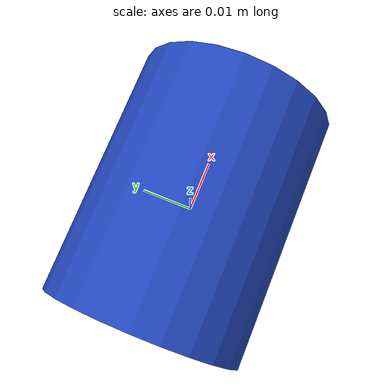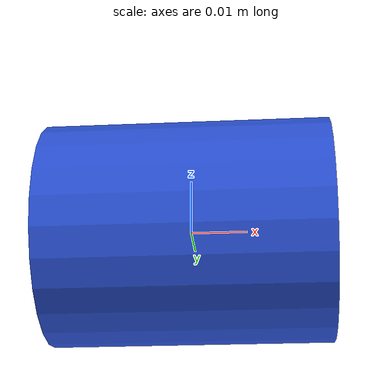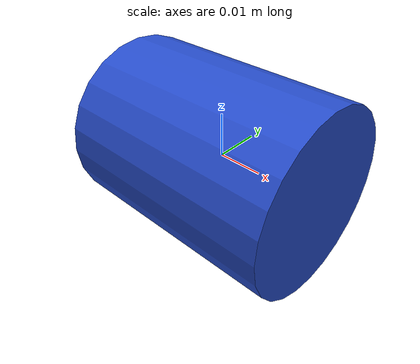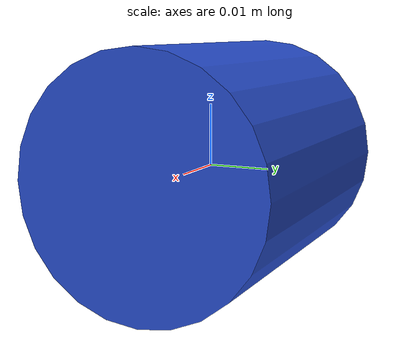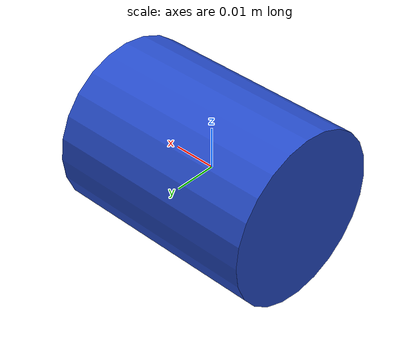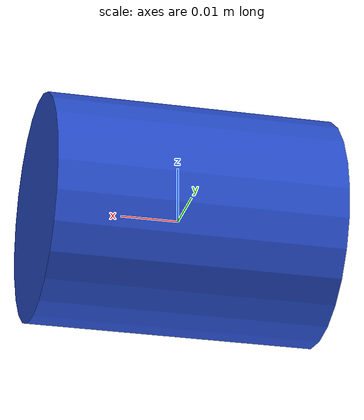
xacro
<?xml version="1.0"?>
<robot name="smocap_hog_camera" xmlns:xacro="http://www.ros.org/wiki/xacro">
  <xacro:property name="PI" value="3.1415926535897931" />

  <xacro:arg name="camera_id" default="1"/>
  <!-- pose of the camera root_link -->
  <xacro:arg name="camera_x"  default="0."/>
  <xacro:arg name="camera_y"  default="0."/>
  <xacro:arg name="camera_z"  default="0."/>
  <xacro:arg name="camera_R"  default="0."/>
  <xacro:arg name="camera_P"  default="0."/>
  <xacro:arg name="camera_Y"  default="0."/>
  <xacro:arg name="camera_w"  default="640"/>
  <xacro:arg name="camera_h"  default="480"/>

  <xacro:arg name="camera_root_link"  default="camera_root_link"/>

  <!-- Import camera macros -->
  <xacro:include filename="$(find smocap)/urdf/camera.urdf.xacro" />

  <!-- Instanciate camera -->
  <link name="$(arg camera_root_link)" />
  <xacro:smocap_camera _cid="$(arg camera_id)" _root_link="$(arg camera_root_link)"
		       _x="$(arg camera_x)" _y="$(arg camera_y)" _z="$(arg camera_z)"
		       _rx="$(arg camera_R)" _ry="$(arg camera_P)" _rz="$(arg camera_Y)"
		       _w="$(arg camera_w)" _h="$(arg camera_h)"
		       _k1="0." _k2="0." _k3="0." _t1="0." _t2="0." _fps="30." _static="false"/>

  <gazebo>
    <plugin name="hand_of_god" filename="libgazebo_ros_hand_of_god.so">
      <linkName>$(arg camera_root_link)</linkName>
      <kl>0.4</kl>
      <ka>0.01</ka>
      <frameId>$(arg camera_root_link)</frameId>
    </plugin>
  </gazebo>

  <gazebo>
    <plugin name="ground_truth" filename="libgazebo_ros_p3d.so">
      <frameName>world</frameName>
      <bodyName>$(arg camera_root_link)</bodyName>
      <topicName>smocap/$(arg camera_root_link)_truth</topicName>
      <updateRate>30.0</updateRate>
    </plugin>
  </gazebo>

</robot>

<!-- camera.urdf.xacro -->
<robot name="smocap_camera" xmlns:xacro="http://www.ros.org/wiki/xacro">

 <xacro:macro name="smocap_camera" params="_cid _root_link _x _y _z _rx _ry _rz _w _h _k1 _k2 _t1 _t2 _k3 _fps _static">

   <xacro:property name="camera_r" value="0.01" />

   <xacro:if value="${_static}">
     <gazebo>
       <static>true</static>
     </gazebo>
   </xacro:if>

   <link name="camera_${_cid}_link">

    <collision>
      <origin xyz="0 0 0" rpy="0 0 0"/>
      <geometry>
	<box size="${camera_r} ${camera_r} ${camera_r}"/>
      </geometry>
    </collision>

    <visual>
      <origin xyz="0 0 0" rpy="0 0 0"/>
      <geometry>
	<box size="${camera_r} ${camera_r} ${camera_r}"/>
      </geometry>
      <material name="red"/>
      <cast_shadows>false</cast_shadows>
    </visual>

    <inertial>
      <mass value="1e-5" />
      <origin xyz="0 0 0" rpy="0 0 0"/>
      <inertia ixx="1e-6" ixy="0" ixz="0" iyy="1e-6" iyz="0" izz="1e-6" />
      </inertial>

  </link>

   <link name="camera_${_cid}_optical_frame">
    <inertial>
      <mass value="0.01"/>
      <origin rpy="0 0 0" xyz="0 0 0"/>
      <inertia ixx="0.001" ixy="0.0" ixz="0.0" iyy="0.001" iyz="0.0" izz="0.001"/>
    </inertial>
    <visual>
      <!-- bogus values for visual aesthetics -->
      <origin rpy="0 0 ${PI/2}" xyz="0 0 0"/>
      <geometry>
        <cylinder length="0.05" radius="0.02"/>
      </geometry>
      <material name="Blue"/>
    </visual>
    <collision>
      <origin rpy="0 0 0" xyz="0 0 0"/>
      <geometry>
        <box size="0.01 0.01 0.01"/>
      </geometry>
    </collision>
  </link>

  <joint name="camera_${_cid}_joint"  type="fixed">
    <origin xyz="${_x} ${_y} ${_z}" rpy="${_rx} ${_ry} ${_rz}" />
    <parent link="${_root_link}"/>
    <child link="camera_${_cid}_link"/>
  </joint>

  <joint name="camera_${_cid}_optical_frame_joint" type="fixed">
    <origin rpy="${-PI/2} 0.0 ${-PI/2}" xyz="0.0 0.0 0.0"/>
    <parent link="camera_${_cid}_link"/>
    <child link="camera_${_cid}_optical_frame"/>
  </joint>

  <gazebo reference="camera_${_cid}_link">
    <sensor type="camera" name="camera_${_cid}">
      <update_rate>${_fps}</update_rate>
      <camera name="${_cid}">
        <horizontal_fov>1.15</horizontal_fov>
        <image>
          <width>${_w}</width>
          <height>${_h}</height>
          <format>R8G8B8</format>
        </image>
        <clip>
          <near>0.02</near>
          <far>15</far>
        </clip>
        <noise>
          <type>gaussian</type>
          <mean>0.0</mean>
          <stddev>0.007</stddev>
        </noise>
      </camera>
      <plugin name="camera_controller" filename="libgazebo_ros_camera.so">
        <alwaysOn>true</alwaysOn>
        <updateRate>0.0</updateRate>
        <cameraName>camera_${_cid}</cameraName>
        <imageTopicName>image_raw</imageTopicName>
        <cameraInfoTopicName>camera_info</cameraInfoTopicName>
        <frameName>camera_${_cid}_link</frameName>
        <hackBaseline>0.07</hackBaseline>
        <distortionK1>${_k1}</distortionK1>
        <distortionK2>${_k2}</distortionK2>
        <distortionK3>${_k3}</distortionK3>

        <distortionT1>${_t1}</distortionT1>
        <distortionT2>${_t2}</distortionT2>
      </plugin>
    </sensor>
  </gazebo>

 </xacro:macro>

</robot>
